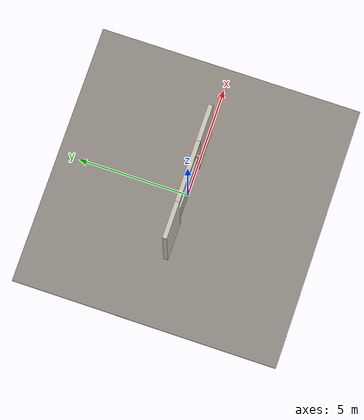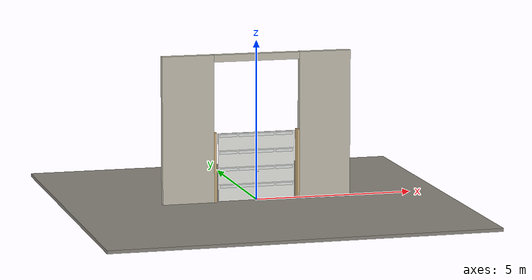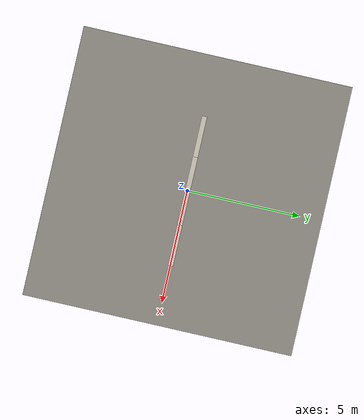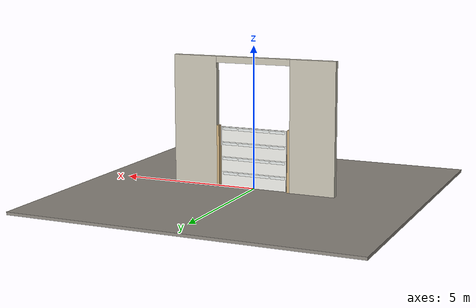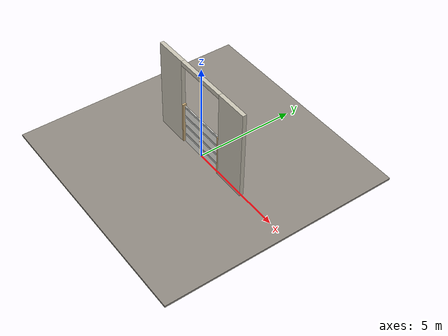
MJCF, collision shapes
<?xml version="1.0" ?>
<mujoco model="db0780_garage_sectional_minimal">
  <compiler angle="radian" meshdir="../../hardware" texturedir="../../textures" autolimits="true" inertiafromgeom="false"/>
  <option timestep="0.002" integrator="implicitfast" cone="elliptic" impratio="10" noslip_iterations="3">
    <flag multiccd="enable"/>
  </option>
  <size memory="16M"/>
  <default>
    <geom condim="4" solref="0.005 1" solimp="0.95 0.99 0.001"/>
    <joint solreflimit="0.005 1" solimplimit="0.95 0.99 0.001"/>
    <tendon solreflimit="0.005 1"/>
    <equality solref="0.002 1"/>
  </default>
  <visual>
    <headlight ambient="0.4 0.4 0.4" diffuse="0.7 0.7 0.7" specular="0.2 0.2 0.2"/>
    <quality shadowsize="4096"/>
    <map znear="0.01" zfar="60"/>
  </visual>
  <asset>
    <mesh name="lever_01c630149d" file="lever_01c630149d.obj"/>
    <material name="mat_floor" rgba="0.55 0.53 0.5 1" specular="0.2" shininess="0.15" reflectance="0"/>
    <material name="mat_wall" rgba="0.78 0.76 0.7 1" specular="0.2" shininess="0.1" reflectance="0"/>
    <material name="mat_frame" rgba="0.82 0.7 0.5 1" specular="0.2" shininess="0.45" reflectance="0"/>
    <material name="mat_track" rgba="0.65 0.66 0.68 1" specular="0.74" shininess="0.5" reflectance="0.36"/>
    <material name="mat_section_0" rgba="0.93 0.93 0.91 1" specular="0.23" shininess="0.4" reflectance="0.02"/>
    <material name="mat_glass" rgba="0.85 0.92 0.95 0.25" specular="0.2" shininess="0.95" reflectance="0.1"/>
    <material name="mat_section_1" rgba="0.93 0.93 0.91 1" specular="0.23" shininess="0.4" reflectance="0.02"/>
    <material name="mat_hinge_line" rgba="0.2 0.2 0.2 1" specular="0.2" shininess="0.3" reflectance="0"/>
    <material name="mat_section_2" rgba="0.93 0.93 0.91 1" specular="0.23" shininess="0.4" reflectance="0.02"/>
    <material name="mat_section_3" rgba="0.93 0.93 0.91 1" specular="0.23" shininess="0.4" reflectance="0.02"/>
    <material name="mat_spring" rgba="0.55 0.56 0.58 1" specular="0.8" shininess="0.55" reflectance="0.4"/>
    <material name="mat_op_black_matte_metal" rgba="0.05 0.05 0.05 1" specular="0.38" shininess="0.3" reflectance="0.12"/>
    <material name="mat_trim" rgba="0.85 0.66 0.3 1" specular="0.8" shininess="0.75" reflectance="0.4"/>
    <material name="mat_lockbar" rgba="0.65 0.66 0.68 1" specular="0.74" shininess="0.5" reflectance="0.36"/>
    <texture name="skybox" type="skybox" builtin="gradient" rgb1="0.6 0.7 0.85" rgb2="0.9 0.92 0.95" width="256" height="256"/>
  </asset>
  <worldbody>
    <light name="sun" pos="1.5 -2.5 4" dir="-0.3 0.5 -0.8" directional="true" diffuse="0.8 0.8 0.8" specular="0.3 0.3 0.3" castshadow="true"/>
    <light name="fill" pos="-1.5 2.5 3" dir="0.3 -0.5 -0.7" directional="true" diffuse="0.35 0.35 0.4" castshadow="false"/>
    <camera name="robot_view" pos="0 -2.959375 1.918625" xyaxes="1 0 0 0 0.26963 0.962964" fovy="52"/>
    <camera name="far_view" pos="0 2.959375 1.918625" xyaxes="-1 0 0 0 -0.26963 0.962964" fovy="52"/>
    <camera name="iso" pos="2.249125 -2.485875 2.392125" xyaxes="0.741536 0.670913 0 -0.242917 0.268487 0.932151" fovy="46"/>
    <camera name="detail_handle" pos="0.2115 -1.165 1.25" xyaxes="0.975133 0.221621 0 -0.065674 0.288965 0.955084" fovy="38"/>
    <geom name="floor" type="box" size="6 6 0.05" pos="0 0 -0.05" material="mat_floor" group="0" contype="1" conaffinity="1" friction="0.8 0.005 0.0001" density="2400"/>
    <geom name="wall_left" type="box" size="0.8175 0.1 2.305" pos="-2.1825 0 2.305" material="mat_wall" group="0" contype="1" conaffinity="1" friction="0.6 0.005 0.0001" density="800"/>
    <geom name="wall_right" type="box" size="0.8175 0.1 2.305" pos="2.1825 0 2.305" material="mat_wall" group="0" contype="1" conaffinity="1" friction="0.6 0.005 0.0001" density="800"/>
    <geom name="wall_header" type="box" size="1.365 0.1 0.11" pos="0 0 4.5" material="mat_wall" group="0" contype="1" conaffinity="1" friction="0.6 0.005 0.0001" density="800"/>
    <geom name="garage_jamb_l" type="box" size="0.04 0.1 1.09" pos="-1.325 0 1.09" material="mat_frame" group="0" contype="1" conaffinity="1" friction="0.6 0.005 0.0001" density="400"/>
    <geom name="garage_jamb_r" type="box" size="0.04 0.1 1.09" pos="1.325 0 1.09" material="mat_frame" group="0" contype="1" conaffinity="1" friction="0.6 0.005 0.0001" density="400"/>
    <site name="approach_point" pos="0 -2 0" quat="1 0 0 0" size="0.05" rgba="0.2 0.9 0.2 0.5" group="4"/>
    <site name="goal_point" pos="0 2 0" quat="1 0 0 0" size="0.05" rgba="0.2 0.9 0.2 0.5" group="4"/>
    <site name="door_plane_center" pos="0 0 1.09" quat="1 0 0 0" size="0.02" rgba="0.2 0.9 0.2 0.5" group="4"/>
    <body name="door" pos="0 0 0">
      <inertial pos="0 0 1.075115" mass="67.362988" quat="0 0 0.707107 0.707107" diaginertia="25.482850048 33.43392928 58.888710322"/>
      <joint name="door_slide" type="slide" axis="0 0 1" limited="true" range="0 2.08" damping="5.388149" frictionloss="43.194314" stiffness="91.084207" springref="6.933333" armature="0.5"/>
      <geom name="section_0_slab" type="box" size="1.22 0.025 0.26625" pos="0 0 0.27625" material="mat_section_0" group="0" contype="1" conaffinity="1" friction="0.4 0.005 0.0001" density="1"/>
      <geom name="section_0_glass_0" type="box" size="0.2775 0.0258 0.0426" pos="-0.8925 0 0.46795" material="mat_glass" group="1" contype="0" conaffinity="0" density="1"/>
      <geom name="section_0_glass_1" type="box" size="0.2775 0.0258 0.0426" pos="-0.2975 0 0.46795" material="mat_glass" group="1" contype="0" conaffinity="0" density="1"/>
      <geom name="section_0_glass_2" type="box" size="0.2775 0.0258 0.0426" pos="0.2975 0 0.46795" material="mat_glass" group="1" contype="0" conaffinity="0" density="1"/>
      <geom name="section_0_glass_3" type="box" size="0.2775 0.0258 0.0426" pos="0.8925 0 0.46795" material="mat_glass" group="1" contype="0" conaffinity="0" density="1"/>
      <geom name="section_1_slab" type="box" size="1.22 0.025 0.26625" pos="0 0 0.80875" material="mat_section_1" group="0" contype="1" conaffinity="1" friction="0.4 0.005 0.0001" density="1"/>
      <geom name="section_1_glass_0" type="box" size="0.2775 0.0258 0.0426" pos="-0.8925 0 1.00045" material="mat_glass" group="1" contype="0" conaffinity="0" density="1"/>
      <geom name="section_1_glass_1" type="box" size="0.2775 0.0258 0.0426" pos="-0.2975 0 1.00045" material="mat_glass" group="1" contype="0" conaffinity="0" density="1"/>
      <geom name="section_1_glass_2" type="box" size="0.2775 0.0258 0.0426" pos="0.2975 0 1.00045" material="mat_glass" group="1" contype="0" conaffinity="0" density="1"/>
      <geom name="section_1_glass_3" type="box" size="0.2775 0.0258 0.0426" pos="0.8925 0 1.00045" material="mat_glass" group="1" contype="0" conaffinity="0" density="1"/>
      <geom name="section_2_slab" type="box" size="1.22 0.025 0.26625" pos="0 0 1.34125" material="mat_section_2" group="0" contype="1" conaffinity="1" friction="0.4 0.005 0.0001" density="1"/>
      <geom name="section_2_glass_0" type="box" size="0.2775 0.0258 0.0426" pos="-0.8925 0 1.53295" material="mat_glass" group="1" contype="0" conaffinity="0" density="1"/>
      <geom name="section_2_glass_1" type="box" size="0.2775 0.0258 0.0426" pos="-0.2975 0 1.53295" material="mat_glass" group="1" contype="0" conaffinity="0" density="1"/>
      <geom name="section_2_glass_2" type="box" size="0.2775 0.0258 0.0426" pos="0.2975 0 1.53295" material="mat_glass" group="1" contype="0" conaffinity="0" density="1"/>
      <geom name="section_2_glass_3" type="box" size="0.2775 0.0258 0.0426" pos="0.8925 0 1.53295" material="mat_glass" group="1" contype="0" conaffinity="0" density="1"/>
      <geom name="section_3_slab" type="box" size="1.22 0.025 0.26625" pos="0 0 1.87375" material="mat_section_3" group="0" contype="1" conaffinity="1" friction="0.4 0.005 0.0001" density="1"/>
      <geom name="section_3_glass_0" type="box" size="0.2775 0.0258 0.0426" pos="-0.8925 0 2.06545" material="mat_glass" group="1" contype="0" conaffinity="0" density="1"/>
      <geom name="section_3_glass_1" type="box" size="0.2775 0.0258 0.0426" pos="-0.2975 0 2.06545" material="mat_glass" group="1" contype="0" conaffinity="0" density="1"/>
      <geom name="section_3_glass_2" type="box" size="0.2775 0.0258 0.0426" pos="0.2975 0 2.06545" material="mat_glass" group="1" contype="0" conaffinity="0" density="1"/>
      <geom name="section_3_glass_3" type="box" size="0.2775 0.0258 0.0426" pos="0.8925 0 2.06545" material="mat_glass" group="1" contype="0" conaffinity="0" density="1"/>
      <body name="t_handle" pos="0 0 0.9">
        <inertial pos="0 -0.054115 0" mass="0.254469" quat="1 0 0 0" diaginertia="0.000075558 0.000207252 0.000256627"/>
        <joint name="t_handle_hinge" type="hinge" axis="0 -1 0" limited="true" range="0 1.5708" damping="0.127805" frictionloss="0.028" stiffness="0.4" springref="-0.75" armature="0.01"/>
        <geom name="t_handle_t_n" type="mesh" mesh="lever_01c630149d" pos="0 -0.025 0" quat="0.707107 0.707107 0 0" material="mat_op_black_matte_metal" group="1" contype="0" conaffinity="0" density="3000"/>
        <geom name="t_handle_t_col_n" type="box" size="0.055 0.008 0.008" pos="0 -0.065 0" material="mat_op_black_matte_metal" group="3" contype="1" conaffinity="1" rgba="0.8 0.3 0.3 0.25" friction="0.6 0.005 0.0001" density="3000"/>
        <site name="t_handle_grip_n" pos="-0.0385 -0.065 0" quat="1 0 0 0" size="0.012" rgba="0.2 0.9 0.2 0.5" group="4"/>
      </body>
    </body>
  </worldbody>
  <sensor>
    <jointpos name="door_slide_pos" joint="door_slide"/>
    <jointvel name="door_slide_vel" joint="door_slide"/>
    <jointpos name="t_handle_hinge_pos" joint="t_handle_hinge"/>
    <jointvel name="t_handle_hinge_vel" joint="t_handle_hinge"/>
  </sensor>
</mujoco>
